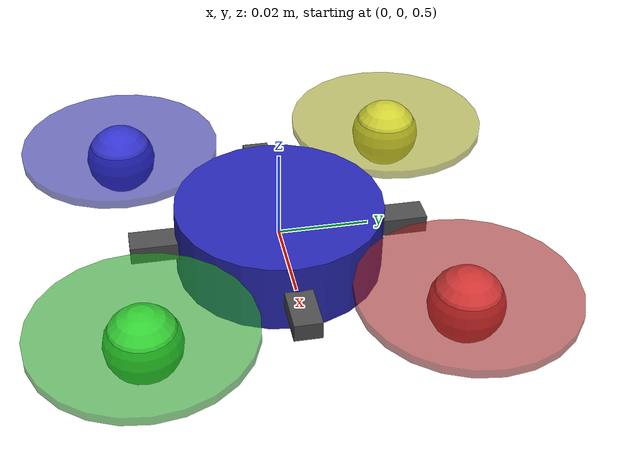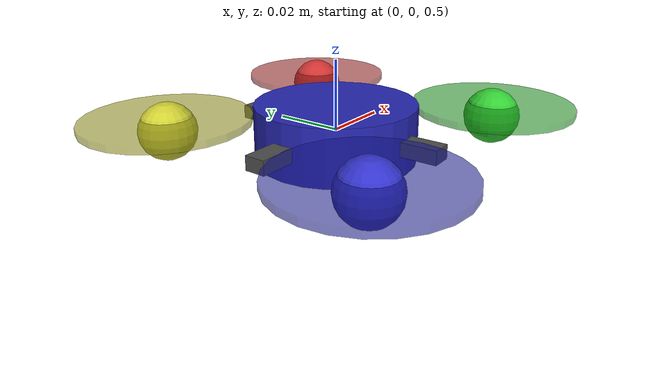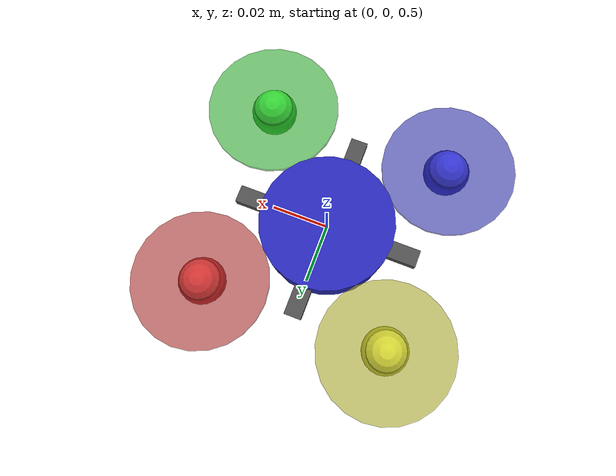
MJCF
<?xml version="1.0" encoding="utf-8"?>
<mujoco model="crazyflie">

  <compiler angle="radian" autolimits="true"/>

  <option
    timestep="0.01"
    gravity="0 0 -9.81"
    integrator="RK4"
    iterations="1"
    tolerance="1e-10"/>

  <default>
    <geom contype="1" conaffinity="1" condim="3" friction="1.0 0.005 0.0001"/>
  </default>

  <worldbody>

    <light name="sky" directional="true" pos="0 0 5" dir="0 0 -1" diffuse="0.8 0.8 0.8"/>
    <geom name="floor" type="plane" pos="0 0 0" size="20 20 0.1"
          rgba="0.5 0.6 0.5 1" contype="1" conaffinity="1"/>

    <body name="drone" pos="0 0 0.5">
      <freejoint name="root"/>

      <!-- Mass and inertia from SimpleFlight paper / Crazyflie published values -->
      <inertial
        mass="0.0321"
        pos="0 0 0"
        diaginertia="1.4e-5 1.4e-5 2.17e-5"/>

      <!-- Body visual only — mass is in inertial element above -->
      <geom name="body_viz" type="cylinder" size="0.023 0.008"
            pos="0 0 0" rgba="0.15 0.15 0.7 1" mass="0"/>

      <!-- Arm cross-members (visual) -->
      <geom name="arm_x" type="box" size="0.033 0.003 0.002"
            pos="0 0 0" rgba="0.3 0.3 0.3 1" mass="0"/>
      <geom name="arm_y" type="box" size="0.003 0.033 0.002"
            pos="0 0 0" rgba="0.3 0.3 0.3 1" mass="0"/>

      <!--
        Rotor sites — used to read rotor positions for force application.
        d = 0.046 / sqrt(2) = 0.032527 m
      -->
      <site name="rotor0" pos=" 0.0325  0.0325 0.002" size="0.008" rgba="0.8 0.2 0.2 1"/>
      <site name="rotor1" pos=" 0.0325 -0.0325 0.002" size="0.008" rgba="0.2 0.8 0.2 1"/>
      <site name="rotor2" pos="-0.0325 -0.0325 0.002" size="0.008" rgba="0.2 0.2 0.8 1"/>
      <site name="rotor3" pos="-0.0325  0.0325 0.002" size="0.008" rgba="0.8 0.8 0.2 1"/>

      <!-- Rotor disk visuals -->
      <geom name="prop0" type="cylinder" size="0.023 0.001"
            pos=" 0.0325  0.0325 0.005" rgba="0.6 0.1 0.1 0.6" mass="0"/>
      <geom name="prop1" type="cylinder" size="0.023 0.001"
            pos=" 0.0325 -0.0325 0.005" rgba="0.1 0.6 0.1 0.6" mass="0"/>
      <geom name="prop2" type="cylinder" size="0.023 0.001"
            pos="-0.0325 -0.0325 0.005" rgba="0.1 0.1 0.6 0.6" mass="0"/>
      <geom name="prop3" type="cylinder" size="0.023 0.001"
            pos="-0.0325  0.0325 0.005" rgba="0.6 0.6 0.1 0.6" mass="0"/>

    </body>
  </worldbody>

  <!-- Camera for visualization -->
  <visual>
    <headlight ambient="0.4 0.4 0.4" diffuse="0.6 0.6 0.6"/>
  </visual>

</mujoco>
